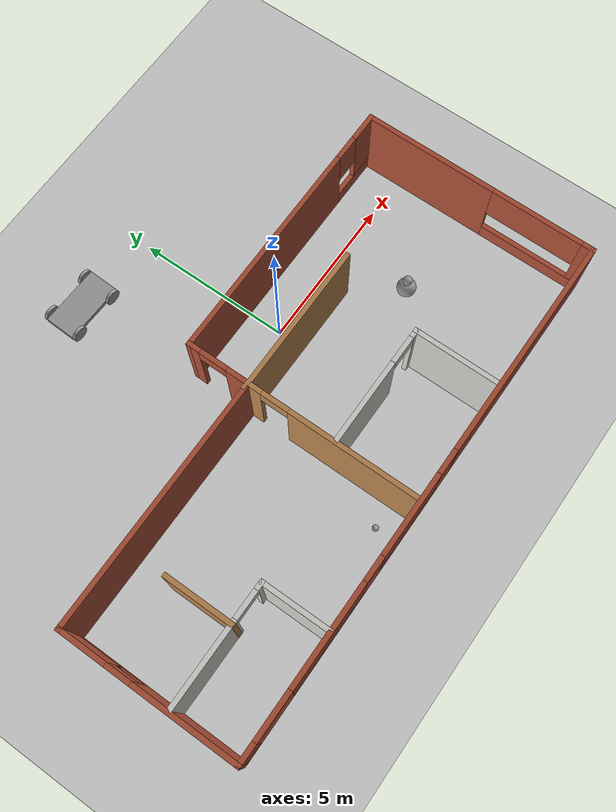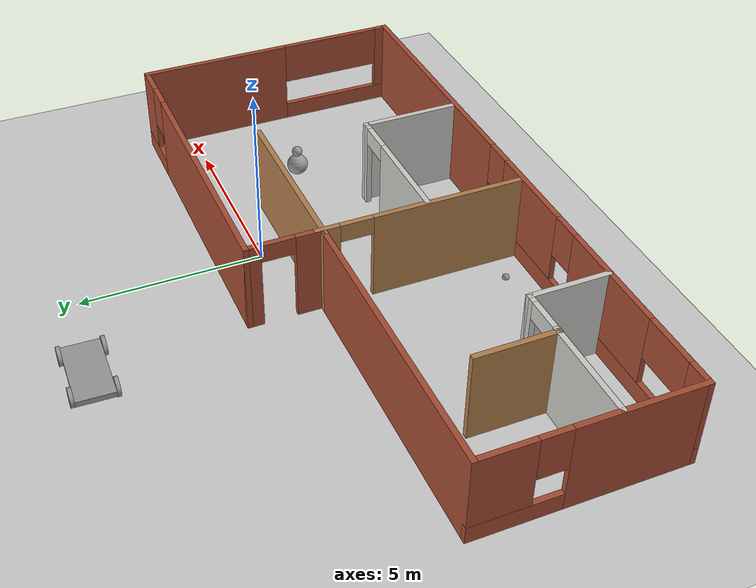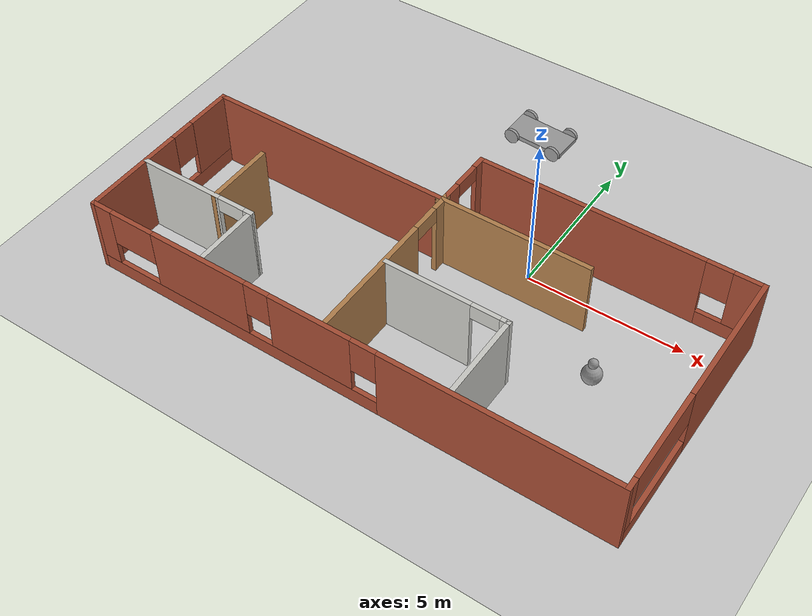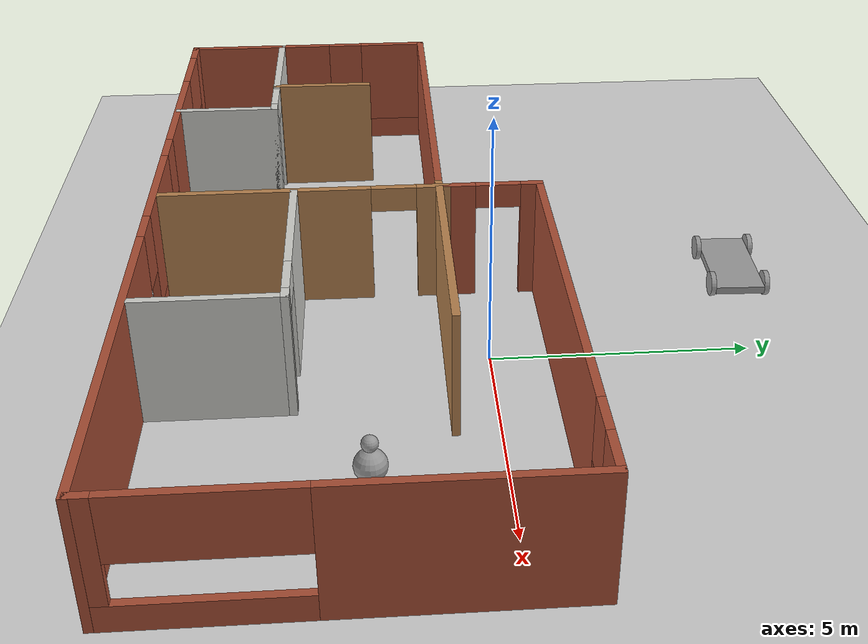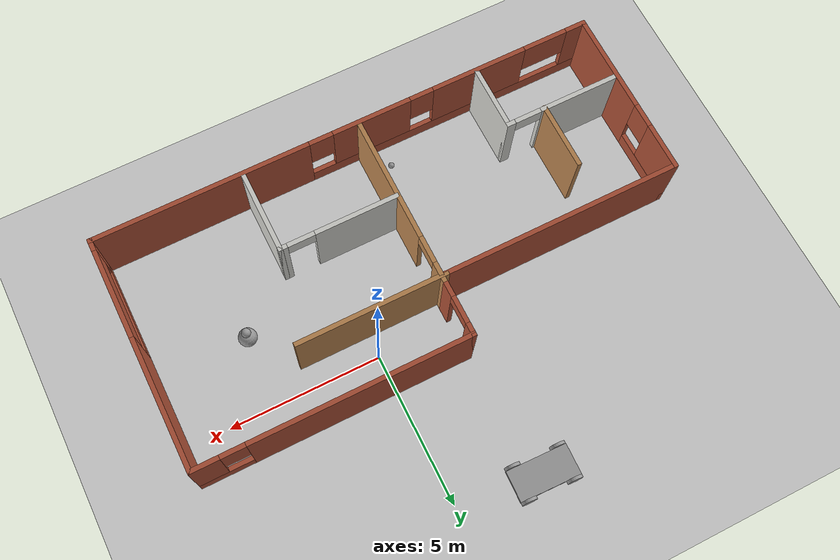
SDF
<sdf version="1.6">
 <world name="default">
  <plugin name="welcome" filename="libwelcome.so"/>
  <light name="sun" type="directional">
   <pose>0 0 10 0 -0 0</pose>
   <diffuse>0.8 0.8 0.8 1</diffuse>
   <specular>0.2 0.2 0.2 1</specular>
   <attenuation>
    <range>1000</range>
    <constant>0.9</constant>
    <linear>0.01</linear>
    <quadratic>0.001</quadratic>
   </attenuation>
   <direction>-0.5 0.1 -0.9</direction>
  </light>
  <model name="ground_plane">
   <static>1</static>
   <link name="link">
    <collision name="collision">
     <geometry><plane><normal>0 0 1</normal><size>100 100</size></plane></geometry>
     <surface>
      <contact><collide_bitmask>65535</collide_bitmask></contact>
      <friction><ode><mu>100</mu><mu2>50</mu2></ode></friction>
     </surface>
    </collision>
    <visual name="visual">
     <cast_shadows>0</cast_shadows>
     <geometry><plane><normal>0 0 1</normal><size>100 100</size></plane></geometry>
     <material>
      <script><uri>file://media/materials/scripts/gazebo.material</uri><name>Gazebo/Grey</name></script>
     </material>
    </visual>
   </link>
  </model>
  <gravity>0 0 -9.8</gravity>
  <magnetic_field>6e-06 2.3e-05 -4.2e-05</magnetic_field>
  <atmosphere type="adiabatic"/>
  <physics name="default_physics" default="0" type="ode">
   <max_step_size>0.001</max_step_size>
   <real_time_factor>1</real_time_factor>
   <real_time_update_rate>1000</real_time_update_rate>
  </physics>
  <scene><ambient>0.4 0.4 0.4 1</ambient><background>0.7 0.7 0.7 1</background><shadows>1</shadows></scene>
  <spherical_coordinates>
   <surface_model>EARTH_WGS84</surface_model>
   <latitude_deg>0</latitude_deg>
   <longitude_deg>0</longitude_deg>
   <elevation>0</elevation>
   <heading_deg>0</heading_deg>
  </spherical_coordinates>
  <model name="snow">
   <link name="link_0">
    <pose>-0 -0 -0.225 0 -0 0</pose>
    <inertial>
     <mass>1</mass>
     <inertia><ixx>0.1</ixx><ixy>0</ixy><ixz>0</ixz><iyy>0.1</iyy><iyz>0</iyz><izz>0.1</izz></inertia>
    </inertial>
    <visual name="visual">
     <geometry><sphere><radius>0.3</radius></sphere></geometry>
     <material>
      <lighting>1</lighting>
      <script><uri>file://media/materials/scripts/gazebo.material</uri><name>Gazebo/Grey</name></script>
      <shader type="pixel"><normal_map>__default__</normal_map></shader>
      <ambient>0.3 0.3 0.3 1</ambient>
      <diffuse>0.7 0.7 0.7 1</diffuse>
      <specular>0.01 0.01 0.01 1</specular>
      <emissive>0 0 0 1</emissive>
     </material>
    </visual>
    <collision name="collision">
     <geometry><sphere><radius>0.3</radius></sphere></geometry>
     <surface>
      <friction>
       <ode><mu>1</mu><mu2>1</mu2><fdir1>0 0 0</fdir1><slip1>0</slip1><slip2>0</slip2></ode>
       <torsional>
        <coefficient>1</coefficient>
        <patch_radius>0</patch_radius>
        <surface_radius>0</surface_radius>
        <use_patch_radius>1</use_patch_radius>
        <ode><slip>0</slip></ode>
       </torsional>
      </friction>
      <bounce><restitution_coefficient>0</restitution_coefficient><threshold>1e+06</threshold></bounce>
      <contact>
       <collide_without_contact>0</collide_without_contact>
       <collide_without_contact_bitmask>1</collide_without_contact_bitmask>
       <collide_bitmask>1</collide_bitmask>
       <ode>
        <soft_cfm>0</soft_cfm>
        <soft_erp>0.2</soft_erp>
        <kp>1e+13</kp>
        <kd>1</kd>
        <max_vel>0.01</max_vel>
        <min_depth>0</min_depth>
       </ode>
       <bullet>
        <split_impulse>1</split_impulse>
        <split_impulse_penetration_threshold>-0.01</split_impulse_penetration_threshold>
        <soft_cfm>0</soft_cfm>
        <soft_erp>0.2</soft_erp>
        <kp>1e+13</kp>
        <kd>1</kd>
       </bullet>
      </contact>
     </surface>
    </collision>
   </link>
   <link name="link_0_clone">
    <pose>-0 -0 0.225 0 -0 0</pose>
    <inertial>
     <mass>1</mass>
     <inertia><ixx>0.1</ixx><ixy>0</ixy><ixz>0</ixz><iyy>0.1</iyy><iyz>0</iyz><izz>0.1</izz></inertia>
    </inertial>
    <visual name="visual">
     <geometry><sphere><radius>0.15</radius></sphere></geometry>
     <material>
      <lighting>1</lighting>
      <script><uri>file://media/materials/scripts/gazebo.material</uri><name>Gazebo/Grey</name></script>
      <shader type="pixel"><normal_map>__default__</normal_map></shader>
      <ambient>0.3 0.3 0.3 1</ambient>
      <diffuse>0.7 0.7 0.7 1</diffuse>
      <specular>0.01 0.01 0.01 1</specular>
      <emissive>0 0 0 1</emissive>
     </material>
    </visual>
    <collision name="collision">
     <geometry><sphere><radius>0.15</radius></sphere></geometry>
     <surface>
      <friction>
       <ode><mu>1</mu><mu2>1</mu2><fdir1>0 0 0</fdir1><slip1>0</slip1><slip2>0</slip2></ode>
       <torsional>
        <coefficient>1</coefficient>
        <patch_radius>0</patch_radius>
        <surface_radius>0</surface_radius>
        <use_patch_radius>1</use_patch_radius>
        <ode><slip>0</slip></ode>
       </torsional>
      </friction>
      <bounce><restitution_coefficient>0</restitution_coefficient><threshold>1e+06</threshold></bounce>
      <contact>
       <collide_without_contact>0</collide_without_contact>
       <collide_without_contact_bitmask>1</collide_without_contact_bitmask>
       <collide_bitmask>1</collide_bitmask>
       <ode>
        <soft_cfm>0</soft_cfm>
        <soft_erp>0.2</soft_erp>
        <kp>1e+13</kp>
        <kd>1</kd>
        <max_vel>0.01</max_vel>
        <min_depth>0</min_depth>
       </ode>
       <bullet>
        <split_impulse>1</split_impulse>
        <split_impulse_penetration_threshold>-0.01</split_impulse_penetration_threshold>
        <soft_cfm>0</soft_cfm>
        <soft_erp>0.2</soft_erp>
        <kp>1e+13</kp>
        <kd>1</kd>
       </bullet>
      </contact>
     </surface>
    </collision>
   </link>
   <joint name="link_0_JOINT_0" type="revolute">
    <parent>link_0</parent>
    <child>link_0_clone</child>
    <axis>
     <xyz>0 0 1</xyz>
     <use_parent_model_frame>0</use_parent_model_frame>
     <limit>
      <lower>-1.79769e+308</lower>
      <upper>1.79769e+308</upper>
      <effort>-1</effort>
      <velocity>-1</velocity>
     </limit>
     <dynamics>
      <spring_reference>0</spring_reference>
      <spring_stiffness>0</spring_stiffness>
      <damping>0</damping>
     </dynamics>
    </axis>
    <physics>
     <ode><limit><cfm>0</cfm><erp>0.2</erp></limit><suspension><cfm>0</cfm><erp>0.2</erp></suspension></ode>
    </physics>
   </joint>
   <static>0</static>
   <pose>3.3568 -2.31354 0.525 0 -0 0</pose>
  </model>
  <model name="building">
   <pose>-2.04699 -2.60906 0 0 -0 0</pose>
   <link name="Wall_0">
    <pose>4 3.8 0 0 -0 0</pose>
    <visual name="Wall_0_Visual_0">
     <pose>-0.880795 0 1.25 0 -0 0</pose>
     <geometry><box><size>7.23841 0.15 2.5</size></box></geometry>
     <material>
      <script><uri>file://media/materials/scripts/gazebo.material</uri><name>Gazebo/Bricks</name></script>
      <ambient>1 1 1 1</ambient>
     </material>
     <meta><layer>0</layer></meta>
    </visual>
    <collision name="Wall_0_Collision_0">
     <geometry><box><size>7.23841 0.15 2.5</size></box></geometry>
     <pose>-0.880795 0 1.25 0 -0 0</pose>
    </collision>
    <visual name="Wall_0_Visual_1">
     <pose>3.61921 0 0.25 0 -0 0</pose>
     <geometry><box><size>1.76159 0.15 0.5</size></box></geometry>
     <material>
      <script><uri>file://media/materials/scripts/gazebo.material</uri><name>Gazebo/Bricks</name></script>
      <ambient>1 1 1 1</ambient>
     </material>
     <meta><layer>0</layer></meta>
    </visual>
    <collision name="Wall_0_Collision_1">
     <geometry><box><size>1.76159 0.15 0.5</size></box></geometry>
     <pose>3.61921 0 0.25 0 -0 0</pose>
    </collision>
    <visual name="Wall_0_Visual_2">
     <pose>4.01921 0 1.5 0 -0 0</pose>
     <geometry><box><size>0.96159 0.15 2</size></box></geometry>
     <material>
      <script><uri>file://media/materials/scripts/gazebo.material</uri><name>Gazebo/Bricks</name></script>
      <ambient>1 1 1 1</ambient>
     </material>
     <meta><layer>0</layer></meta>
    </visual>
    <collision name="Wall_0_Collision_2">
     <geometry><box><size>0.96159 0.15 2</size></box></geometry>
     <pose>4.01921 0 1.5 0 -0 0</pose>
    </collision>
    <visual name="Wall_0_Visual_3">
     <pose>3.13841 0 1.9 0 -0 0</pose>
     <geometry><box><size>0.8 0.15 1.2</size></box></geometry>
     <material>
      <script><uri>file://media/materials/scripts/gazebo.material</uri><name>Gazebo/Bricks</name></script>
      <ambient>1 1 1 1</ambient>
     </material>
     <meta><layer>0</layer></meta>
    </visual>
    <collision name="Wall_0_Collision_3">
     <geometry><box><size>0.8 0.15 1.2</size></box></geometry>
     <pose>3.13841 0 1.9 0 -0 0</pose>
    </collision>
   </link>
   <link name="Wall_1">
    <pose>8.425 0 0 0 0 -1.5708</pose>
    <visual name="Wall_1_Visual_0">
     <pose>-1.69542 0 1.25 0 -0 0</pose>
     <geometry><box><size>4.35915 0.15 2.5</size></box></geometry>
     <material>
      <script><uri>file://media/materials/scripts/gazebo.material</uri><name>Gazebo/Bricks</name></script>
      <ambient>1 1 1 1</ambient>
     </material>
     <meta><layer>0</layer></meta>
    </visual>
    <collision name="Wall_1_Collision_0">
     <geometry><box><size>4.35915 0.15 2.5</size></box></geometry>
     <pose>-1.69542 0 1.25 0 -0 0</pose>
    </collision>
    <visual name="Wall_1_Visual_1">
     <pose>2.17957 0 0.25 0 -0 0</pose>
     <geometry><box><size>3.39085 0.15 0.5</size></box></geometry>
     <material>
      <script><uri>file://media/materials/scripts/gazebo.material</uri><name>Gazebo/Bricks</name></script>
      <ambient>1 1 1 1</ambient>
     </material>
     <meta><layer>0</layer></meta>
    </visual>
    <collision name="Wall_1_Collision_1">
     <geometry><box><size>3.39085 0.15 0.5</size></box></geometry>
     <pose>2.17957 0 0.25 0 -0 0</pose>
    </collision>
    <visual name="Wall_1_Visual_2">
     <pose>3.6617 0 1.5 0 -0 0</pose>
     <geometry><box><size>0.426599 0.15 2</size></box></geometry>
     <material>
      <script><uri>file://media/materials/scripts/gazebo.material</uri><name>Gazebo/Bricks</name></script>
      <ambient>1 1 1 1</ambient>
     </material>
     <meta><layer>0</layer></meta>
    </visual>
    <collision name="Wall_1_Collision_2">
     <geometry><box><size>0.426599 0.15 2</size></box></geometry>
     <pose>3.6617 0 1.5 0 -0 0</pose>
    </collision>
    <visual name="Wall_1_Visual_3">
     <pose>1.96628 0 1.9 0 -0 0</pose>
     <geometry><box><size>2.96425 0.15 1.2</size></box></geometry>
     <material>
      <script><uri>file://media/materials/scripts/gazebo.material</uri><name>Gazebo/Bricks</name></script>
      <ambient>1 1 1 1</ambient>
     </material>
     <meta><layer>0</layer></meta>
    </visual>
    <collision name="Wall_1_Collision_3">
     <geometry><box><size>2.96425 0.15 1.2</size></box></geometry>
     <pose>1.96628 0 1.9 0 -0 0</pose>
    </collision>
   </link>
   <link name="Wall_19">
    <collision name="Wall_19_Collision">
     <geometry><box><size>5 0.15 2.5</size></box></geometry>
     <pose>0 0 1.25 0 -0 0</pose>
    </collision>
    <visual name="Wall_19_Visual">
     <pose>0 0 1.25 0 -0 0</pose>
     <geometry><box><size>5 0.15 2.5</size></box></geometry>
     <material>
      <script><uri>file://media/materials/scripts/gazebo.material</uri><name>Gazebo/Wood</name></script>
      <ambient>1 1 1 1</ambient>
     </material>
     <meta><layer>0</layer></meta>
    </visual>
    <pose>1.85 1.8 0 0 -0 0</pose>
   </link>
   <link name="Wall_2">
    <pose>0 -3.8 0 0 -0 3.14159</pose>
    <visual name="Wall_2_Visual_0">
     <pose>-4.87885 0 1.25 0 -0 0</pose>
     <geometry><box><size>7.24229 0.15 2.5</size></box></geometry>
     <material>
      <script><uri>file://media/materials/scripts/gazebo.material</uri><name>Gazebo/Bricks</name></script>
      <ambient>1 1 1 1</ambient>
     </material>
     <meta><layer>0</layer></meta>
    </visual>
    <collision name="Wall_2_Collision_0">
     <geometry><box><size>7.24229 0.15 2.5</size></box></geometry>
     <pose>-4.87885 0 1.25 0 -0 0</pose>
    </collision>
    <visual name="Wall_2_Visual_1">
     <pose>3.62115 0 0.25 0 -0 0</pose>
     <geometry><box><size>9.75771 0.15 0.5</size></box></geometry>
     <material>
      <script><uri>file://media/materials/scripts/gazebo.material</uri><name>Gazebo/Bricks</name></script>
      <ambient>1 1 1 1</ambient>
     </material>
     <meta><layer>0</layer></meta>
    </visual>
    <collision name="Wall_2_Collision_1">
     <geometry><box><size>9.75771 0.15 0.5</size></box></geometry>
     <pose>3.62115 0 0.25 0 -0 0</pose>
    </collision>
    <visual name="Wall_2_Visual_2">
     <pose>0.877088 0 1.5 0 -0 0</pose>
     <geometry><box><size>2.66959 0.15 2</size></box></geometry>
     <material>
      <script><uri>file://media/materials/scripts/gazebo.material</uri><name>Gazebo/Bricks</name></script>
      <ambient>1 1 1 1</ambient>
     </material>
     <meta><layer>0</layer></meta>
    </visual>
    <collision name="Wall_2_Collision_2">
     <geometry><box><size>2.66959 0.15 2</size></box></geometry>
     <pose>0.877088 0 1.5 0 -0 0</pose>
    </collision>
    <visual name="Wall_2_Visual_3">
     <pose>4.64106 0 1.5 0 -0 0</pose>
     <geometry><box><size>3.25836 0.15 2</size></box></geometry>
     <material>
      <script><uri>file://media/materials/scripts/gazebo.material</uri><name>Gazebo/Bricks</name></script>
      <ambient>1 1 1 1</ambient>
     </material>
     <meta><layer>0</layer></meta>
    </visual>
    <collision name="Wall_2_Collision_3">
     <geometry><box><size>3.25836 0.15 2</size></box></geometry>
     <pose>4.64106 0 1.5 0 -0 0</pose>
    </collision>
    <visual name="Wall_2_Visual_4">
     <pose>8.13512 0 1.5 0 -0 0</pose>
     <geometry><box><size>0.729757 0.15 2</size></box></geometry>
     <material>
      <script><uri>file://media/materials/scripts/gazebo.material</uri><name>Gazebo/Bricks</name></script>
      <ambient>1 1 1 1</ambient>
     </material>
     <meta><layer>0</layer></meta>
    </visual>
    <collision name="Wall_2_Collision_4">
     <geometry><box><size>0.729757 0.15 2</size></box></geometry>
     <pose>8.13512 0 1.5 0 -0 0</pose>
    </collision>
    <visual name="Wall_2_Visual_5">
     <pose>-0.857708 0 1.9 0 -0 0</pose>
     <geometry><box><size>0.8 0.15 1.2</size></box></geometry>
     <material>
      <script><uri>file://media/materials/scripts/gazebo.material</uri><name>Gazebo/Bricks</name></script>
      <ambient>1 1 1 1</ambient>
     </material>
     <meta><layer>0</layer></meta>
    </visual>
    <collision name="Wall_2_Collision_5">
     <geometry><box><size>0.8 0.15 1.2</size></box></geometry>
     <pose>-0.857708 0 1.9 0 -0 0</pose>
    </collision>
    <visual name="Wall_2_Visual_6">
     <pose>2.61188 0 1.9 0 -0 0</pose>
     <geometry><box><size>0.8 0.15 1.2</size></box></geometry>
     <material>
      <script><uri>file://media/materials/scripts/gazebo.material</uri><name>Gazebo/Bricks</name></script>
      <ambient>1 1 1 1</ambient>
     </material>
     <meta><layer>0</layer></meta>
    </visual>
    <collision name="Wall_2_Collision_6">
     <geometry><box><size>0.8 0.15 1.2</size></box></geometry>
     <pose>2.61188 0 1.9 0 -0 0</pose>
    </collision>
    <visual name="Wall_2_Visual_7">
     <pose>7.02024 0 1.9 0 -0 0</pose>
     <geometry><box><size>1.5 0.15 1.2</size></box></geometry>
     <material>
      <script><uri>file://media/materials/scripts/gazebo.material</uri><name>Gazebo/Bricks</name></script>
      <ambient>1 1 1 1</ambient>
     </material>
     <meta><layer>0</layer></meta>
    </visual>
    <collision name="Wall_2_Collision_7">
     <geometry><box><size>1.5 0.15 1.2</size></box></geometry>
     <pose>7.02024 0 1.9 0 -0 0</pose>
    </collision>
   </link>
   <link name="Wall_3">
    <pose>-8.425 -1 0 0 -0 1.5708</pose>
    <visual name="Wall_3_Visual_0">
     <pose>-1.18298 0 1.25 0 -0 0</pose>
     <geometry><box><size>3.38403 0.15 2.5</size></box></geometry>
     <material>
      <script><uri>file://media/materials/scripts/gazebo.material</uri><name>Gazebo/Bricks</name></script>
      <ambient>1 1 1 1</ambient>
     </material>
     <meta><layer>0</layer></meta>
    </visual>
    <collision name="Wall_3_Collision_0">
     <geometry><box><size>3.38403 0.15 2.5</size></box></geometry>
     <pose>-1.18298 0 1.25 0 -0 0</pose>
    </collision>
    <visual name="Wall_3_Visual_1">
     <pose>1.69202 0 0.25 0 -0 0</pose>
     <geometry><box><size>2.36597 0.15 0.5</size></box></geometry>
     <material>
      <script><uri>file://media/materials/scripts/gazebo.material</uri><name>Gazebo/Bricks</name></script>
      <ambient>1 1 1 1</ambient>
     </material>
     <meta><layer>0</layer></meta>
    </visual>
    <collision name="Wall_3_Collision_1">
     <geometry><box><size>2.36597 0.15 0.5</size></box></geometry>
     <pose>1.69202 0 0.25 0 -0 0</pose>
    </collision>
    <visual name="Wall_3_Visual_2">
     <pose>2.09201 0 1.5 0 -0 0</pose>
     <geometry><box><size>1.56597 0.15 2</size></box></geometry>
     <material>
      <script><uri>file://media/materials/scripts/gazebo.material</uri><name>Gazebo/Bricks</name></script>
      <ambient>1 1 1 1</ambient>
     </material>
     <meta><layer>0</layer></meta>
    </visual>
    <collision name="Wall_3_Collision_2">
     <geometry><box><size>1.56597 0.15 2</size></box></geometry>
     <pose>2.09201 0 1.5 0 -0 0</pose>
    </collision>
    <visual name="Wall_3_Visual_3">
     <pose>0.909029 0 1.9 0 -0 0</pose>
     <geometry><box><size>0.8 0.15 1.2</size></box></geometry>
     <material>
      <script><uri>file://media/materials/scripts/gazebo.material</uri><name>Gazebo/Bricks</name></script>
      <ambient>1 1 1 1</ambient>
     </material>
     <meta><layer>0</layer></meta>
    </visual>
    <collision name="Wall_3_Collision_3">
     <geometry><box><size>0.8 0.15 1.2</size></box></geometry>
     <pose>0.909029 0 1.9 0 -0 0</pose>
    </collision>
   </link>
   <link name="Wall_33">
    <pose>-6.46953 -1.66385 0 0 -0 0</pose>
    <visual name="Wall_33_Visual_0">
     <pose>-0.603054 0 1.25 0 -0 0</pose>
     <geometry><box><size>2.79389 0.15 2.5</size></box></geometry>
     <material>
      <script><uri>file://media/materials/scripts/gazebo.material</uri><name>Gazebo/CeilingTiled</name></script>
      <ambient>1 1 1 1</ambient>
     </material>
     <meta><layer>0</layer></meta>
    </visual>
    <collision name="Wall_33_Collision_0">
     <geometry><box><size>2.79389 0.15 2.5</size></box></geometry>
     <pose>-0.603054 0 1.25 0 -0 0</pose>
    </collision>
    <visual name="Wall_33_Visual_1">
     <pose>1.84695 0 1.25 0 -0 0</pose>
     <geometry><box><size>0.306107 0.15 2.5</size></box></geometry>
     <material>
      <script><uri>file://media/materials/scripts/gazebo.material</uri><name>Gazebo/CeilingTiled</name></script>
      <ambient>1 1 1 1</ambient>
     </material>
     <meta><layer>0</layer></meta>
    </visual>
    <collision name="Wall_33_Collision_1">
     <geometry><box><size>0.306107 0.15 2.5</size></box></geometry>
     <pose>1.84695 0 1.25 0 -0 0</pose>
    </collision>
    <visual name="Wall_33_Visual_2">
     <pose>1.24389 0 2.25 0 -0 0</pose>
     <geometry><box><size>0.9 0.15 0.5</size></box></geometry>
     <material>
      <script><uri>file://media/materials/scripts/gazebo.material</uri><name>Gazebo/CeilingTiled</name></script>
      <ambient>1 1 1 1</ambient>
     </material>
     <meta><layer>0</layer></meta>
    </visual>
    <collision name="Wall_33_Collision_2">
     <geometry><box><size>0.9 0.15 0.5</size></box></geometry>
     <pose>1.24389 0 2.25 0 -0 0</pose>
    </collision>
   </link>
   <link name="Wall_34">
    <collision name="Wall_34_Collision">
     <geometry><box><size>2.25 0.15 2.5</size></box></geometry>
     <pose>0 0 1.25 0 -0 0</pose>
    </collision>
    <visual name="Wall_34_Visual">
     <pose>0 0 1.25 0 -0 0</pose>
     <geometry><box><size>2.25 0.15 2.5</size></box></geometry>
     <material>
      <script><uri>file://media/materials/scripts/gazebo.material</uri><name>Gazebo/CeilingTiled</name></script>
      <ambient>1 1 1 1</ambient>
     </material>
     <meta><layer>0</layer></meta>
    </visual>
    <pose>-4.54453 -2.71385 0 0 0 -1.5708</pose>
   </link>
   <link name="Wall_36">
    <collision name="Wall_36_Collision">
     <geometry><box><size>2.25 0.15 2.5</size></box></geometry>
     <pose>0 0 1.25 0 -0 0</pose>
    </collision>
    <visual name="Wall_36_Visual">
     <pose>0 0 1.25 0 -0 0</pose>
     <geometry><box><size>2.25 0.15 2.5</size></box></geometry>
     <material>
      <script><uri>file://media/materials/scripts/gazebo.material</uri><name>Gazebo/Wood</name></script>
      <ambient>1 1 1 1</ambient>
     </material>
     <meta><layer>0</layer></meta>
    </visual>
    <pose>-5.82704 -0.623224 0 0 0 -1.5708</pose>
   </link>
   <link name="Wall_4">
    <collision name="Wall_4_Collision">
     <geometry><box><size>8 0.15 2.5</size></box></geometry>
     <pose>0 0 1.25 0 -0 0</pose>
    </collision>
    <visual name="Wall_4_Visual">
     <pose>0 0 1.25 0 -0 0</pose>
     <geometry><box><size>8 0.15 2.5</size></box></geometry>
     <material>
      <script><uri>file://media/materials/scripts/gazebo.material</uri><name>Gazebo/Bricks</name></script>
      <ambient>1 1 1 1</ambient>
     </material>
     <meta><layer>0</layer></meta>
    </visual>
    <pose>-4.5 1.8 0 0 -0 0</pose>
   </link>
   <link name="Wall_42">
    <pose>1.55679 -1.06246 0 0 -0 0</pose>
    <visual name="Wall_42_Visual_0">
     <pose>-0.603053 0 1.25 0 -0 0</pose>
     <geometry><box><size>2.79389 0.15 2.5</size></box></geometry>
     <material>
      <script><uri>file://media/materials/scripts/gazebo.material</uri><name>Gazebo/CeilingTiled</name></script>
      <ambient>1 1 1 1</ambient>
     </material>
     <meta><layer>0</layer></meta>
    </visual>
    <collision name="Wall_42_Collision_0">
     <geometry><box><size>2.79389 0.15 2.5</size></box></geometry>
     <pose>-0.603053 0 1.25 0 -0 0</pose>
    </collision>
    <visual name="Wall_42_Visual_1">
     <pose>1.84695 0 1.25 0 -0 0</pose>
     <geometry><box><size>0.306107 0.15 2.5</size></box></geometry>
     <material>
      <script><uri>file://media/materials/scripts/gazebo.material</uri><name>Gazebo/CeilingTiled</name></script>
      <ambient>1 1 1 1</ambient>
     </material>
     <meta><layer>0</layer></meta>
    </visual>
    <collision name="Wall_42_Collision_1">
     <geometry><box><size>0.306107 0.15 2.5</size></box></geometry>
     <pose>1.84695 0 1.25 0 -0 0</pose>
    </collision>
    <visual name="Wall_42_Visual_2">
     <pose>1.24389 0 2.25 0 -0 0</pose>
     <geometry><box><size>0.9 0.15 0.5</size></box></geometry>
     <material>
      <script><uri>file://media/materials/scripts/gazebo.material</uri><name>Gazebo/CeilingTiled</name></script>
      <ambient>1 1 1 1</ambient>
     </material>
     <meta><layer>0</layer></meta>
    </visual>
    <collision name="Wall_42_Collision_2">
     <geometry><box><size>0.9 0.15 0.5</size></box></geometry>
     <pose>1.24389 0 2.25 0 -0 0</pose>
    </collision>
   </link>
   <link name="Wall_43">
    <collision name="Wall_43_Collision">
     <geometry><box><size>2.75 0.15 2.5</size></box></geometry>
     <pose>0 0 1.25 0 -0 0</pose>
    </collision>
    <visual name="Wall_43_Visual">
     <pose>0 0 1.25 0 -0 0</pose>
     <geometry><box><size>2.75 0.15 2.5</size></box></geometry>
     <material>
      <script><uri>file://media/materials/scripts/gazebo.material</uri><name>Gazebo/CeilingTiled</name></script>
      <ambient>1 1 1 1</ambient>
     </material>
     <meta><layer>0</layer></meta>
    </visual>
    <pose>3.48178 -2.36246 0 0 0 -1.5708</pose>
   </link>
   <link name="Wall_45">
    <pose>-0.425 2.875 0 0 0 -1.5708</pose>
    <visual name="Wall_45_Visual_0">
     <pose>-0.773908 0 1.25 0 -0 0</pose>
     <geometry><box><size>0.452183 0.15 2.5</size></box></geometry>
     <material>
      <script><uri>file://media/materials/scripts/gazebo.material</uri><name>Gazebo/Bricks</name></script>
      <ambient>1 1 1 1</ambient>
     </material>
     <meta><layer>0</layer></meta>
    </visual>
    <collision name="Wall_45_Collision_0">
     <geometry><box><size>0.452183 0.15 2.5</size></box></geometry>
     <pose>-0.773908 0 1.25 0 -0 0</pose>
    </collision>
    <visual name="Wall_45_Visual_1">
     <pose>0.676092 0 1.25 0 -0 0</pose>
     <geometry><box><size>0.647817 0.15 2.5</size></box></geometry>
     <material>
      <script><uri>file://media/materials/scripts/gazebo.material</uri><name>Gazebo/Bricks</name></script>
      <ambient>1 1 1 1</ambient>
     </material>
     <meta><layer>0</layer></meta>
    </visual>
    <collision name="Wall_45_Collision_1">
     <geometry><box><size>0.647817 0.15 2.5</size></box></geometry>
     <pose>0.676092 0 1.25 0 -0 0</pose>
    </collision>
    <visual name="Wall_45_Visual_2">
     <pose>-0.097817 0 2.25 0 -0 0</pose>
     <geometry><box><size>0.9 0.15 0.5</size></box></geometry>
     <material>
      <script><uri>file://media/materials/scripts/gazebo.material</uri><name>Gazebo/Bricks</name></script>
      <ambient>1 1 1 1</ambient>
     </material>
     <meta><layer>0</layer></meta>
    </visual>
    <collision name="Wall_45_Collision_2">
     <geometry><box><size>0.9 0.15 0.5</size></box></geometry>
     <pose>-0.097817 0 2.25 0 -0 0</pose>
    </collision>
   </link>
   <link name="Wall_47">
    <pose>-0.425 -0.85 0 0 0 -1.5708</pose>
    <visual name="Wall_47_Visual_0">
     <pose>-2.5365 0 1.25 0 -0 0</pose>
     <geometry><box><size>0.676998 0.15 2.5</size></box></geometry>
     <material>
      <script><uri>file://media/materials/scripts/gazebo.material</uri><name>Gazebo/Wood</name></script>
      <ambient>1 1 1 1</ambient>
     </material>
     <meta><layer>0</layer></meta>
    </visual>
    <collision name="Wall_47_Collision_0">
     <geometry><box><size>0.676998 0.15 2.5</size></box></geometry>
     <pose>-2.5365 0 1.25 0 -0 0</pose>
    </collision>
    <visual name="Wall_47_Visual_1">
     <pose>0.788499 0 1.25 0 -0 0</pose>
     <geometry><box><size>4.173 0.15 2.5</size></box></geometry>
     <material>
      <script><uri>file://media/materials/scripts/gazebo.material</uri><name>Gazebo/Wood</name></script>
      <ambient>1 1 1 1</ambient>
     </material>
     <meta><layer>0</layer></meta>
    </visual>
    <collision name="Wall_47_Collision_1">
     <geometry><box><size>4.173 0.15 2.5</size></box></geometry>
     <pose>0.788499 0 1.25 0 -0 0</pose>
    </collision>
    <visual name="Wall_47_Visual_2">
     <pose>-1.748 0 2.25 0 -0 0</pose>
     <geometry><box><size>0.9 0.15 0.5</size></box></geometry>
     <material>
      <script><uri>file://media/materials/scripts/gazebo.material</uri><name>Gazebo/Wood</name></script>
      <ambient>1 1 1 1</ambient>
     </material>
     <meta><layer>0</layer></meta>
    </visual>
    <collision name="Wall_47_Collision_2">
     <geometry><box><size>0.9 0.15 0.5</size></box></geometry>
     <pose>-1.748 0 2.25 0 -0 0</pose>
    </collision>
   </link>
   <static>1</static>
  </model>
  <model name="cart">
   <link name="link_0">
    <pose>0 -0 -0.020999 0 -0 0</pose>
    <inertial>
     <mass>1</mass>
     <inertia>
      <ixx>0.166667</ixx>
      <ixy>0</ixy>
      <ixz>0</ixz>
      <iyy>0.166667</iyy>
      <iyz>0</iyz>
      <izz>0.166667</izz>
     </inertia>
    </inertial>
    <visual name="visual">
     <geometry><box><size>2 1 0.15</size></box></geometry>
     <material>
      <lighting>1</lighting>
      <script><uri>file://media/materials/scripts/gazebo.material</uri><name>Gazebo/Grey</name></script>
      <shader type="pixel"><normal_map>__default__</normal_map></shader>
      <ambient>0.3 0.3 0.3 1</ambient>
      <diffuse>0.7 0.7 0.7 1</diffuse>
      <specular>0.01 0.01 0.01 1</specular>
      <emissive>0 0 0 1</emissive>
     </material>
    </visual>
    <collision name="collision">
     <geometry><box><size>2 1 0.15</size></box></geometry>
     <surface>
      <friction>
       <ode><mu>1</mu><mu2>1</mu2><fdir1>0 0 0</fdir1><slip1>0</slip1><slip2>0</slip2></ode>
       <torsional>
        <coefficient>1</coefficient>
        <patch_radius>0</patch_radius>
        <surface_radius>0</surface_radius>
        <use_patch_radius>1</use_patch_radius>
        <ode><slip>0</slip></ode>
       </torsional>
      </friction>
      <bounce><restitution_coefficient>0</restitution_coefficient><threshold>1e+06</threshold></bounce>
      <contact>
       <collide_without_contact>0</collide_without_contact>
       <collide_without_contact_bitmask>1</collide_without_contact_bitmask>
       <collide_bitmask>1</collide_bitmask>
       <ode>
        <soft_cfm>0</soft_cfm>
        <soft_erp>0.2</soft_erp>
        <kp>1e+13</kp>
        <kd>1</kd>
        <max_vel>0.01</max_vel>
        <min_depth>0</min_depth>
       </ode>
       <bullet>
        <split_impulse>1</split_impulse>
        <split_impulse_penetration_threshold>-0.01</split_impulse_penetration_threshold>
        <soft_cfm>0</soft_cfm>
        <soft_erp>0.2</soft_erp>
        <kp>1e+13</kp>
        <kd>1</kd>
       </bullet>
      </contact>
     </surface>
    </collision>
   </link>
   <link name="link_1">
    <pose>-0.75 -0.550024 -0.013504 1.5707 -0 0</pose>
    <inertial>
     <mass>1</mass>
     <inertia><ixx>0.145833</ixx><ixy>0</ixy><ixz>0</ixz><iyy>0.145833</iyy><iyz>0</iyz><izz>0.125</izz></inertia>
    </inertial>
    <visual name="visual">
     <geometry><cylinder><radius>0.25</radius><length>0.1</length></cylinder></geometry>
     <material>
      <lighting>1</lighting>
      <script><uri>file://media/materials/scripts/gazebo.material</uri><name>Gazebo/Grey</name></script>
      <shader type="pixel"><normal_map>__default__</normal_map></shader>
      <ambient>0.3 0.3 0.3 1</ambient>
      <diffuse>0.7 0.7 0.7 1</diffuse>
      <specular>0.01 0.01 0.01 1</specular>
      <emissive>0 0 0 1</emissive>
     </material>
    </visual>
    <collision name="collision">
     <geometry><cylinder><radius>0.25</radius><length>0.1</length></cylinder></geometry>
     <surface>
      <friction>
       <ode><mu>1</mu><mu2>1</mu2><fdir1>0 0 0</fdir1><slip1>0</slip1><slip2>0</slip2></ode>
       <torsional>
        <coefficient>1</coefficient>
        <patch_radius>0</patch_radius>
        <surface_radius>0</surface_radius>
        <use_patch_radius>1</use_patch_radius>
        <ode><slip>0</slip></ode>
       </torsional>
      </friction>
      <bounce><restitution_coefficient>0</restitution_coefficient><threshold>1e+06</threshold></bounce>
      <contact>
       <collide_without_contact>0</collide_without_contact>
       <collide_without_contact_bitmask>1</collide_without_contact_bitmask>
       <collide_bitmask>1</collide_bitmask>
       <ode>
        <soft_cfm>0</soft_cfm>
        <soft_erp>0.2</soft_erp>
        <kp>1e+13</kp>
        <kd>1</kd>
        <max_vel>0.01</max_vel>
        <min_depth>0</min_depth>
       </ode>
       <bullet>
        <split_impulse>1</split_impulse>
        <split_impulse_penetration_threshold>-0.01</split_impulse_penetration_threshold>
        <soft_cfm>0</soft_cfm>
        <soft_erp>0.2</soft_erp>
        <kp>1e+13</kp>
        <kd>1</kd>
       </bullet>
      </contact>
     </surface>
    </collision>
   </link>
   <link name="link_1_clone">
    <pose>-0.75 0.550024 0.011501 1.5707 -0 0</pose>
    <inertial>
     <mass>1</mass>
     <inertia><ixx>0.145833</ixx><ixy>0</ixy><ixz>0</ixz><iyy>0.145833</iyy><iyz>0</iyz><izz>0.125</izz></inertia>
    </inertial>
    <visual name="visual">
     <geometry><cylinder><radius>0.25</radius><length>0.1</length></cylinder></geometry>
     <material>
      <lighting>1</lighting>
      <script><uri>file://media/materials/scripts/gazebo.material</uri><name>Gazebo/Grey</name></script>
      <shader type="pixel"><normal_map>__default__</normal_map></shader>
      <ambient>0.3 0.3 0.3 1</ambient>
      <diffuse>0.7 0.7 0.7 1</diffuse>
      <specular>0.01 0.01 0.01 1</specular>
      <emissive>0 0 0 1</emissive>
     </material>
    </visual>
    <collision name="collision">
     <geometry><cylinder><radius>0.25</radius><length>0.1</length></cylinder></geometry>
     <surface>
      <friction>
       <ode><mu>1</mu><mu2>1</mu2><fdir1>0 0 0</fdir1><slip1>0</slip1><slip2>0</slip2></ode>
       <torsional>
        <coefficient>1</coefficient>
        <patch_radius>0</patch_radius>
        <surface_radius>0</surface_radius>
        <use_patch_radius>1</use_patch_radius>
        <ode><slip>0</slip></ode>
       </torsional>
      </friction>
      <bounce><restitution_coefficient>0</restitution_coefficient><threshold>1e+06</threshold></bounce>
      <contact>
       <collide_without_contact>0</collide_without_contact>
       <collide_without_contact_bitmask>1</collide_without_contact_bitmask>
       <collide_bitmask>1</collide_bitmask>
       <ode>
        <soft_cfm>0</soft_cfm>
        <soft_erp>0.2</soft_erp>
        <kp>1e+13</kp>
        <kd>1</kd>
        <max_vel>0.01</max_vel>
        <min_depth>0</min_depth>
       </ode>
       <bullet>
        <split_impulse>1</split_impulse>
        <split_impulse_penetration_threshold>-0.01</split_impulse_penetration_threshold>
        <soft_cfm>0</soft_cfm>
        <soft_erp>0.2</soft_erp>
        <kp>1e+13</kp>
        <kd>1</kd>
       </bullet>
      </contact>
     </surface>
    </collision>
   </link>
   <link name="link_1_clone_0">
    <pose>0.75 -0.550024 0.011501 1.5707 -0 0</pose>
    <inertial>
     <mass>1</mass>
     <inertia><ixx>0.145833</ixx><ixy>0</ixy><ixz>0</ixz><iyy>0.145833</iyy><iyz>0</iyz><izz>0.125</izz></inertia>
    </inertial>
    <visual name="visual">
     <geometry><cylinder><radius>0.25</radius><length>0.1</length></cylinder></geometry>
     <material>
      <lighting>1</lighting>
      <script><uri>file://media/materials/scripts/gazebo.material</uri><name>Gazebo/Grey</name></script>
      <shader type="pixel"><normal_map>__default__</normal_map></shader>
      <ambient>0.3 0.3 0.3 1</ambient>
      <diffuse>0.7 0.7 0.7 1</diffuse>
      <specular>0.01 0.01 0.01 1</specular>
      <emissive>0 0 0 1</emissive>
     </material>
    </visual>
    <collision name="collision">
     <geometry><cylinder><radius>0.25</radius><length>0.1</length></cylinder></geometry>
     <surface>
      <friction>
       <ode><mu>1</mu><mu2>1</mu2><fdir1>0 0 0</fdir1><slip1>0</slip1><slip2>0</slip2></ode>
       <torsional>
        <coefficient>1</coefficient>
        <patch_radius>0</patch_radius>
        <surface_radius>0</surface_radius>
        <use_patch_radius>1</use_patch_radius>
        <ode><slip>0</slip></ode>
       </torsional>
      </friction>
      <bounce><restitution_coefficient>0</restitution_coefficient><threshold>1e+06</threshold></bounce>
      <contact>
       <collide_without_contact>0</collide_without_contact>
       <collide_without_contact_bitmask>1</collide_without_contact_bitmask>
       <collide_bitmask>1</collide_bitmask>
       <ode>
        <soft_cfm>0</soft_cfm>
        <soft_erp>0.2</soft_erp>
        <kp>1e+13</kp>
        <kd>1</kd>
        <max_vel>0.01</max_vel>
        <min_depth>0</min_depth>
       </ode>
       <bullet>
        <split_impulse>1</split_impulse>
        <split_impulse_penetration_threshold>-0.01</split_impulse_penetration_threshold>
        <soft_cfm>0</soft_cfm>
        <soft_erp>0.2</soft_erp>
        <kp>1e+13</kp>
        <kd>1</kd>
       </bullet>
      </contact>
     </surface>
    </collision>
   </link>
   <link name="link_1_clone_1">
    <pose>0.75 0.550024 0.011501 1.5707 -0 0</pose>
    <inertial>
     <mass>1</mass>
     <inertia><ixx>0.145833</ixx><ixy>0</ixy><ixz>0</ixz><iyy>0.145833</iyy><iyz>0</iyz><izz>0.125</izz></inertia>
    </inertial>
    <visual name="visual">
     <geometry><cylinder><radius>0.25</radius><length>0.1</length></cylinder></geometry>
     <material>
      <lighting>1</lighting>
      <script><uri>file://media/materials/scripts/gazebo.material</uri><name>Gazebo/Grey</name></script>
      <shader type="pixel"><normal_map>__default__</normal_map></shader>
      <ambient>0.3 0.3 0.3 1</ambient>
      <diffuse>0.7 0.7 0.7 1</diffuse>
      <specular>0.01 0.01 0.01 1</specular>
      <emissive>0 0 0 1</emissive>
     </material>
    </visual>
    <collision name="collision">
     <geometry><cylinder><radius>0.25</radius><length>0.1</length></cylinder></geometry>
     <surface>
      <friction>
       <ode><mu>1</mu><mu2>1</mu2><fdir1>0 0 0</fdir1><slip1>0</slip1><slip2>0</slip2></ode>
       <torsional>
        <coefficient>1</coefficient>
        <patch_radius>0</patch_radius>
        <surface_radius>0</surface_radius>
        <use_patch_radius>1</use_patch_radius>
        <ode><slip>0</slip></ode>
       </torsional>
      </friction>
      <bounce><restitution_coefficient>0</restitution_coefficient><threshold>1e+06</threshold></bounce>
      <contact>
       <collide_without_contact>0</collide_without_contact>
       <collide_without_contact_bitmask>1</collide_without_contact_bitmask>
       <collide_bitmask>1</collide_bitmask>
       <ode>
        <soft_cfm>0</soft_cfm>
        <soft_erp>0.2</soft_erp>
        <kp>1e+13</kp>
        <kd>1</kd>
        <max_vel>0.01</max_vel>
        <min_depth>0</min_depth>
       </ode>
       <bullet>
        <split_impulse>1</split_impulse>
        <split_impulse_penetration_threshold>-0.01</split_impulse_penetration_threshold>
        <soft_cfm>0</soft_cfm>
        <soft_erp>0.2</soft_erp>
        <kp>1e+13</kp>
        <kd>1</kd>
       </bullet>
      </contact>
     </surface>
    </collision>
   </link>
   <joint name="link_0_JOINT_0" type="revolute">
    <parent>link_0</parent>
    <child>link_1</child>
    <axis>
     <xyz>0 0 1</xyz>
     <use_parent_model_frame>0</use_parent_model_frame>
     <limit>
      <lower>-1.79769e+308</lower>
      <upper>1.79769e+308</upper>
      <effort>-1</effort>
      <velocity>-1</velocity>
     </limit>
     <dynamics>
      <spring_reference>0</spring_reference>
      <spring_stiffness>0</spring_stiffness>
      <damping>0</damping>
     </dynamics>
    </axis>
    <physics>
     <ode><limit><cfm>0</cfm><erp>0.2</erp></limit><suspension><cfm>0</cfm><erp>0.2</erp></suspension></ode>
    </physics>
   </joint>
   <joint name="link_0_JOINT_1" type="revolute">
    <parent>link_0</parent>
    <child>link_1_clone</child>
    <axis>
     <xyz>0 0 1</xyz>
     <use_parent_model_frame>0</use_parent_model_frame>
     <limit>
      <lower>-1.79769e+308</lower>
      <upper>1.79769e+308</upper>
      <effort>-1</effort>
      <velocity>-1</velocity>
     </limit>
     <dynamics>
      <spring_reference>0</spring_reference>
      <spring_stiffness>0</spring_stiffness>
      <damping>0</damping>
     </dynamics>
    </axis>
    <physics>
     <ode><limit><cfm>0</cfm><erp>0.2</erp></limit><suspension><cfm>0</cfm><erp>0.2</erp></suspension></ode>
    </physics>
   </joint>
   <joint name="link_0_JOINT_2" type="revolute">
    <parent>link_0</parent>
    <child>link_1_clone_0</child>
    <axis>
     <xyz>0 0 1</xyz>
     <use_parent_model_frame>0</use_parent_model_frame>
     <limit>
      <lower>-1.79769e+308</lower>
      <upper>1.79769e+308</upper>
      <effort>-1</effort>
      <velocity>-1</velocity>
     </limit>
     <dynamics>
      <spring_reference>0</spring_reference>
      <spring_stiffness>0</spring_stiffness>
      <damping>0</damping>
     </dynamics>
    </axis>
    <physics>
     <ode><limit><cfm>0</cfm><erp>0.2</erp></limit><suspension><cfm>0</cfm><erp>0.2</erp></suspension></ode>
    </physics>
   </joint>
   <joint name="link_0_JOINT_3" type="revolute">
    <parent>link_0</parent>
    <child>link_1_clone_1</child>
    <axis>
     <xyz>0 0 1</xyz>
     <use_parent_model_frame>0</use_parent_model_frame>
     <limit>
      <lower>-1.79769e+308</lower>
      <upper>1.79769e+308</upper>
      <effort>-1</effort>
      <velocity>-1</velocity>
     </limit>
     <dynamics>
      <spring_reference>0</spring_reference>
      <spring_stiffness>0</spring_stiffness>
      <damping>0</damping>
     </dynamics>
    </axis>
    <physics>
     <ode><limit><cfm>0</cfm><erp>0.2</erp></limit><suspension><cfm>0</cfm><erp>0.2</erp></suspension></ode>
    </physics>
   </joint>
   <static>0</static>
   <pose>-2.76528 5.36407 0.251003 -1.2e-05 0.016654 -0.030583</pose>
  </model>
  <model name="my_ball">
   <link name="link_0">
    <inertial>
     <mass>1</mass>
     <inertia><ixx>0.1</ixx><ixy>0</ixy><ixz>0</ixz><iyy>0.1</iyy><iyz>0</iyz><izz>0.1</izz></inertia>
    </inertial>
    <visual name="visual">
     <geometry><sphere><radius>0.1</radius></sphere></geometry>
     <material>
      <lighting>1</lighting>
      <script><uri>file://media/materials/scripts/gazebo.material</uri><name>Gazebo/Grey</name></script>
      <shader type="pixel"><normal_map>__default__</normal_map></shader>
      <ambient>1 1 1 1</ambient>
      <diffuse>1 1 1 1</diffuse>
      <specular>1 1 1 1</specular>
      <emissive>1 1 1 1</emissive>
     </material>
    </visual>
    <collision name="collision">
     <geometry><sphere><radius>0.1</radius></sphere></geometry>
     <surface>
      <friction>
       <ode><mu>1</mu><mu2>1</mu2><fdir1>0 0 0</fdir1><slip1>0</slip1><slip2>0</slip2></ode>
       <torsional>
        <coefficient>1</coefficient>
        <patch_radius>0</patch_radius>
        <surface_radius>0</surface_radius>
        <use_patch_radius>1</use_patch_radius>
        <ode><slip>0</slip></ode>
       </torsional>
      </friction>
      <bounce><restitution_coefficient>0</restitution_coefficient><threshold>1e+06</threshold></bounce>
      <contact>
       <collide_without_contact>0</collide_without_contact>
       <collide_without_contact_bitmask>1</collide_without_contact_bitmask>
       <collide_bitmask>1</collide_bitmask>
       <ode>
        <soft_cfm>0</soft_cfm>
        <soft_erp>0.2</soft_erp>
        <kp>1e+13</kp>
        <kd>1</kd>
        <max_vel>0.01</max_vel>
        <min_depth>0</min_depth>
       </ode>
       <bullet>
        <split_impulse>1</split_impulse>
        <split_impulse_penetration_threshold>-0.01</split_impulse_penetration_threshold>
        <soft_cfm>0</soft_cfm>
        <soft_erp>0.2</soft_erp>
        <kp>1e+13</kp>
        <kd>1</kd>
       </bullet>
      </contact>
     </surface>
    </collision>
   </link>
   <static>0</static>
   <pose>-3.26537 -5.68884 0 0 -0 0</pose>
  </model>
 </world>
</sdf>
